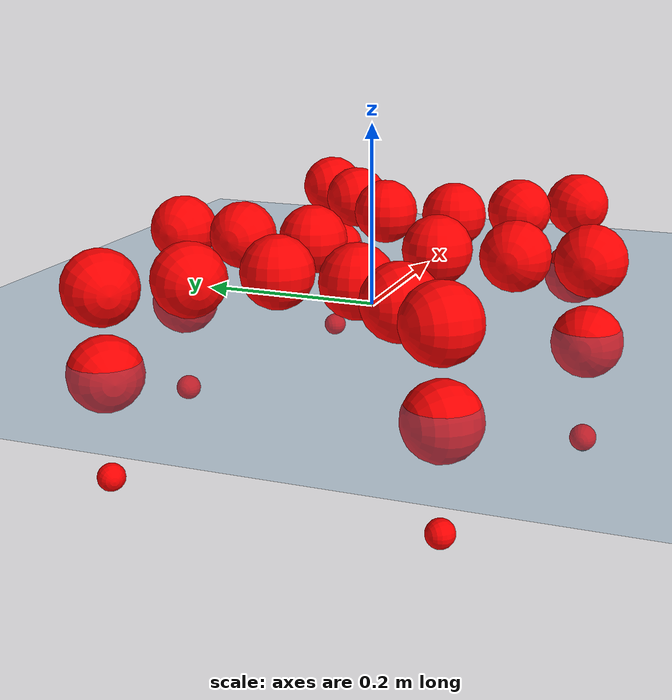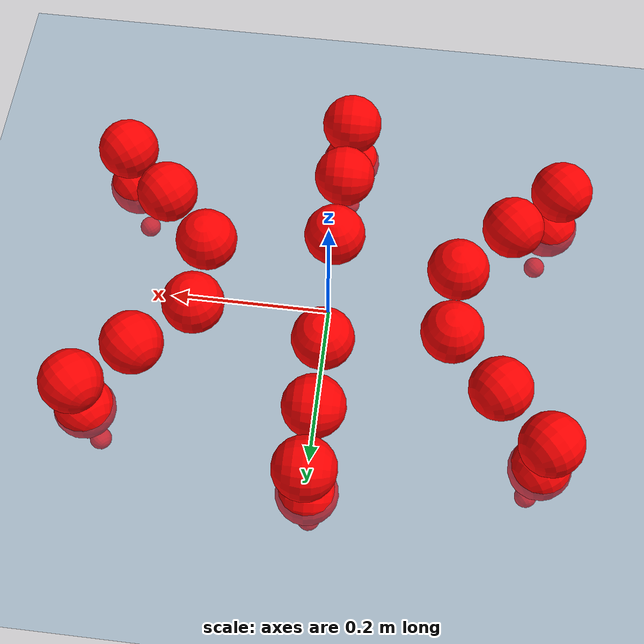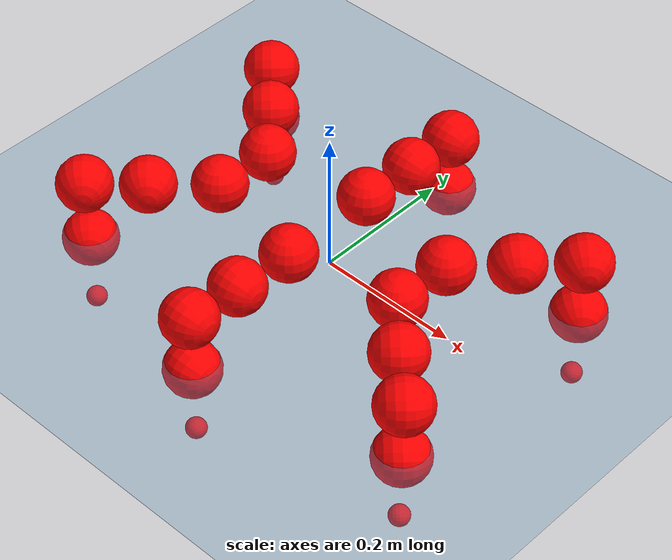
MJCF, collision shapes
<mujoco model="Golem">
  <compiler angle="radian" assetdir="assets" balanceinertia="true" inertiafromgeom="false"/>

  <option timestep="0.005" density="1.2" viscosity="2e-05"/>

  <size nkey="1"/>

  <visual>
    <quality shadowsize="8192"/>
    <map shadowclip="0.5"/>
  </visual>

  <default>
    <default class="/">
      <joint armature="0.01" damping="0.01" frictionloss="0.01"/>
      <geom contype="0" conaffinity="0" group="1" solref="-1000 -80"/>
      <site size="0.01 0.005 0.005" group="5"/>
      <general forcelimited="true" biastype="affine" gainprm="25" biasprm="0 -25 -0.5"/>
      <default class="visual">
        <geom type="mesh" group="2"/>
      </default>
      <default class="collision">
        <geom group="3"/>
      </default>
      <default class="foot">
        <geom size="0.01 0 0" condim="6" group="4" priority="1" solimp="0.015 1 0.01"/>
      </default>
      <default class="reward_collision_sphere">
        <geom group="5" rgba="1 0 0 1"/>
      </default>
    </default>
  </default>

  <asset>
    <texture type="skybox" colorspace="auto" name="//unnamed_texture_0" builtin="gradient" rgb1="0.95 0.95 0.95" rgb2="0.95 0.95 0.95" width="100" height="600"/>
    <texture type="2d" colorspace="auto" name="texplane" builtin="checker" rgb1="0.345 0.575 0.748" rgb2="0.345 0.575 0.748" markrgb="1 1 1" width="512" height="512"/>
    <material name="MatPlane" class="/" texture="texplane" texuniform="true" texrepeat="2 2" specular="0.9"/>
    <mesh name="body" class="/" file="body.stl" scale="0.001 0.001 0.001"/>
    <mesh name="coxa" class="/" file="coxa.stl" scale="0.001 0.001 0.001"/>
    <mesh name="femur" class="/" file="femur.stl" scale="0.001 0.001 0.001"/>
    <mesh name="tibia" class="/" file="tibia.stl" scale="0.001 0.001 0.001"/>
    <mesh name="tarsus" class="/" file="tarsus.stl" scale="0.001 0.001 0.001"/>
  </asset>

  <worldbody>
    <geom name="floor" class="/" size="100 100 0.125" type="plane" group="0" material="MatPlane"/>
    <light name="toplight_shadow" class="/" pos="0 0 5" dir="0.0990148 0.0990148 -0.990148" type="directional" ambient="0.04 0.04 0.04" diffuse="0.55 0.55 0.55" specular="0.12 0.12 0.12"/>
    <light name="toplight_fill" class="/" pos="0 0 5" dir="0.0990148 0.0990148 -0.990148" type="directional" castshadow="false" ambient="0.04 0.04 0.04" diffuse="0.3 0.3 0.3" specular="0.08 0.08 0.08"/>
    <body name="trunk" pos="0.000646024 -0.000441222 -0.000402202" quat="1 -0.000208039 -2.93203e-05 1.02026e-05">
      <inertial pos="0.00313111 0.000240273 -0.00325673" quat="0.999918 0.00320343 -0.00974334 0.00768194" mass="3.29172" diaginertia="0.0104993 0.00258698 0.017112"/>
      <joint name="//unnamed_joint_0" type="free"/>
      <geom name="//unnamed_geom_1" class="/" pos="0 0 0.070544" quat="1 0 0 0" type="mesh" rgba="0.9 0.9 0.9 1" mesh="body"/>
      <site name="imu" class="/" pos="0.124972 -0.00363441 0.100193" size="0.00955381"/>
      <camera name="track" class="/" pos="0 -1.52462 0" quat="0.707107 0.707107 0 0" mode="trackcom"/>
      <camera name="ego_camera" class="/" pos="0.130206 0 0.110225" quat="-0.5 -0.5 0.5 0.5"/>
      <body name="coxa_RR" pos="-0.176926 -0.0626257 0.0689633" quat="0.382573 0.000144436 0.000107418 -0.923925">
        <inertial pos="-0.000342515 -0.00251452 0.000382786" quat="0.999997 -0.00193524 -0.00163228 0.000170458" mass="0.17078" diaginertia="0.00972358 0.00241263 0.0161194"/>
        <joint name="coxa_joint_RR" class="/" pos="0 0 0" axis="0.00108722 -0.00243196 -0.999996" range="-3.19526 3.13873" armature="0.00948396" damping="0" frictionloss="0.00948845"/>
        <geom name="//unnamed_geom_2" class="/" type="mesh" rgba="0.2 0.2 0.2 1" mesh="coxa"/>
        <geom name="//unnamed_geom_3" class="reward_collision_sphere" size="0.0382153" pos="-0.0300475 0 0"/>
        <body name="femur_RR" pos="0.062157 0.00173481 0.00253519" quat="0.499474 -0.500675 0.499295 0.500555">
          <inertial pos="0.000388486 0.000408443 -0.00266986" quat="0.999999 -0.000927154 -0.000708925 0.000453362" mass="0.169617" diaginertia="0.0100064 0.00249545 0.0162687"/>
          <joint name="femur_joint_RR" class="/" pos="0 0 0" axis="-0.0115105 0.00401425 -0.999926" stiffness="0.000600225" range="-3.1384 3.16443" armature="0.00951843" damping="0.00191377" frictionloss="0.0105746"/>
          <geom name="//unnamed_geom_4" class="/" type="mesh" rgba="0.9 0.9 0.9 1" mesh="femur"/>
          <geom name="//unnamed_geom_5" class="reward_collision_sphere" size="0.0382153"/>
          <body name="tibia_RR" pos="-0.00248133 -0.0818114 -0.000726684" quat="1.68988e-05 1 2.96801e-05 -7.98648e-06">
            <inertial pos="0.00100332 -0.0016775 -0.000878942" quat="0.999965 -0.00627908 0.00271747 -0.00478776" mass="0.174074" diaginertia="0.0104465 0.00257236 0.016376"/>
            <joint name="tibia_joint_RR" class="/" pos="0 0 0" axis="0.0144396 0.00643375 0.999875" stiffness="0.000466663" range="-3.08284 3.13001" armature="0.00967677" damping="0.0195295" frictionloss="0.00874949"/>
            <geom name="//unnamed_geom_6" class="/" type="mesh" rgba="0.2 0.2 0.2 1" mesh="tibia"/>
            <geom name="//unnamed_geom_7" class="reward_collision_sphere" size="0.0382153"/>
            <body name="tarsus_RR" pos="0.0903639 -0.00142325 -0.0028765" quat="0.999999 -0.000478529 -0.000738499 0.000939311">
              <inertial pos="0.0587299 -0.000221227 -0.00287812" quat="0.490229 0.503139 0.503797 0.502708" mass="0.17838" diaginertia="0.0100434 0.00262308 0.0156665"/>
              <joint name="tarsus_joint_RR" class="/" pos="0 0 0" axis="0.000526316 0.00170602 0.999998" range="-3.19588 3.14863" armature="0.00906665" damping="0" frictionloss="0.0108612"/>
              <geom name="//unnamed_geom_8" class="/" type="mesh" rgba="0.9 0.9 0.9 1" mesh="tarsus"/>
              <geom name="foot_1" class="foot" size="0.0104516" pos="0.112177 0 0" quat="0 -0.707107 0 0.707107"/>
              <geom name="//unnamed_geom_10" class="reward_collision_sphere" size="0.0382153"/>
              <geom name="//unnamed_geom_11" class="reward_collision_sphere" size="0.0143307" pos="0.10767 0 0"/>
              <site name="foot_1" class="foot" pos="0.112177 0 0" quat="0 -0.707107 0 0.707107" size="0.00955381"/>
            </body>
          </body>
        </body>
      </body>
      <body name="coxa_RM" pos="0.00015696 -0.103965 0.0679979" quat="0.707111 -0.000206315 -0.00036859 -0.707102">
        <inertial pos="0.00300589 0.000131124 -0.00224889" quat="1 -0.000619959 0.000601206 -0.00019631" mass="0.173519" diaginertia="0.00998901 0.00267003 0.0165341"/>
        <joint name="coxa_joint_RM" class="/" pos="0 0 0" axis="0.000820474 0.00313521 -0.999995" range="-3.1595 3.12901" armature="0.0109757" damping="0.00521327" frictionloss="0.0103127"/>
        <geom name="//unnamed_geom_12" class="/" type="mesh" rgba="0.2 0.2 0.2 1" mesh="coxa"/>
        <geom name="//unnamed_geom_13" class="reward_collision_sphere" size="0.0382153" pos="-0.0300475 0 0"/>
        <body name="femur_RM" pos="0.0569051 -0.00270175 0.00104224" quat="0.5004 -0.500055 0.499693 0.499852">
          <inertial pos="0.00174711 -0.00296212 0.000380809" quat="0.999977 -0.00665539 -0.00149831 -0.000552227" mass="0.169301" diaginertia="0.00953163 0.00251325 0.0154748"/>
          <joint name="femur_joint_RM" class="/" pos="0 0 0" axis="0.00206293 -0.0136186 -0.999905" stiffness="0.00777802" range="-3.14755 3.09688" armature="0.0098181" damping="0.0274404" frictionloss="0.00832064"/>
          <geom name="//unnamed_geom_14" class="/" type="mesh" rgba="0.9 0.9 0.9 1" mesh="femur"/>
          <geom name="//unnamed_geom_15" class="reward_collision_sphere" size="0.0382153"/>
          <body name="tibia_RM" pos="-0.00184483 -0.0800635 -0.00106627" quat="-0.00111009 0.999999 -0.000527699 0.000676516">
            <inertial pos="-0.00279968 0.00117343 -0.00109375" quat="0.999907 -0.00158921 -0.0129947 -0.00392629" mass="0.168088" diaginertia="0.00972013 0.00250472 0.0158847"/>
            <joint name="tibia_joint_RM" class="/" pos="0 0 0" axis="-0.00353778 0.000208137 0.999994" range="-3.15118 3.19511" armature="0.00908695" damping="0.0146047" frictionloss="0.0094582"/>
            <geom name="//unnamed_geom_16" class="/" type="mesh" rgba="0.2 0.2 0.2 1" mesh="tibia"/>
            <geom name="//unnamed_geom_17" class="reward_collision_sphere" size="0.0382153"/>
            <body name="tarsus_RM" pos="0.0869222 -0.00050926 0.00052933" quat="1 0.000168001 -6.33203e-05 -6.66383e-05">
              <inertial pos="0.0625854 0.00170055 0.00127142" quat="0.499351 0.502508 0.499018 0.499114" mass="0.176417" diaginertia="0.0100717 0.00254204 0.0164006"/>
              <joint name="tarsus_joint_RM" class="/" pos="0 0 0" axis="0.00162802 -0.00233716 0.999996" range="-3.19494 3.08602" armature="0.00942621" damping="0.00459475" frictionloss="0.00823059"/>
              <geom name="//unnamed_geom_18" class="/" type="mesh" rgba="0.9 0.9 0.9 1" mesh="tarsus"/>
              <geom name="foot_2" class="foot" size="0.0106247" pos="0.112177 0 0" quat="0 -0.707107 0 0.707107"/>
              <geom name="//unnamed_geom_20" class="reward_collision_sphere" size="0.0382153"/>
              <geom name="//unnamed_geom_21" class="reward_collision_sphere" size="0.0143307" pos="0.10767 0 0"/>
              <site name="foot_2" class="foot" pos="0.112177 0 0" quat="0 -0.707107 0 0.707107" size="0.00955381"/>
            </body>
          </body>
        </body>
      </body>
      <body name="coxa_RF" pos="0.177948 -0.0665676 0.0731457" quat="0.924113 -0.000765107 -0.000212954 -0.382118">
        <inertial pos="-3.51934e-05 -0.00207617 0.00286999" quat="0.999944 0.00228006 -0.00825312 0.00619037" mass="0.162578" diaginertia="0.00951393 0.00247695 0.0156607"/>
        <joint name="coxa_joint_RF" class="/" pos="0 0 0" axis="-0.00974485 -0.00332062 -0.999947" range="-3.10171 3.188" armature="0.00826243" damping="0" frictionloss="0.00966341"/>
        <geom name="//unnamed_geom_22" class="/" type="mesh" rgba="0.2 0.2 0.2 1" mesh="coxa"/>
        <geom name="//unnamed_geom_23" class="reward_collision_sphere" size="0.0382153" pos="-0.0300475 0 0"/>
        <body name="femur_RF" pos="0.0587827 -0.00261 -0.0019914" quat="0.500112 -0.499862 0.500041 0.499984">
          <inertial pos="-0.00280103 0.00196912 -0.000696771" quat="0.999991 -0.000379296 0.00423808 -0.000368017" mass="0.173073" diaginertia="0.00998595 0.00263684 0.0163656"/>
          <joint name="femur_joint_RF" class="/" pos="0 0 0" axis="0.00328042 0.00275122 -0.999991" stiffness="0.0054937" range="-3.11925 3.09114" armature="0.009636" damping="0.00058203" frictionloss="0.00843033"/>
          <geom name="//unnamed_geom_24" class="/" type="mesh" rgba="0.9 0.9 0.9 1" mesh="femur"/>
          <geom name="//unnamed_geom_25" class="reward_collision_sphere" size="0.0382153"/>
          <body name="tibia_RF" pos="0.000406283 -0.0850671 0.00173941" quat="3.50161e-05 1 6.61475e-05 3.79581e-06">
            <inertial pos="0.00032991 0.000212152 -0.00142285" quat="0.999924 0.000150633 0.00205906 0.0121222" mass="0.17002" diaginertia="0.00990666 0.00247358 0.0166205"/>
            <joint name="tibia_joint_RF" class="/" pos="0 0 0" axis="0.00162279 -0.00511731 0.999986" range="-3.13213 3.18973" armature="0.00962253" damping="0.00061386" frictionloss="0.0108181"/>
            <geom name="//unnamed_geom_26" class="/" type="mesh" rgba="0.2 0.2 0.2 1" mesh="tibia"/>
            <geom name="//unnamed_geom_27" class="reward_collision_sphere" size="0.0382153"/>
            <body name="tarsus_RF" pos="0.0877733 -0.000229549 0.000926641" quat="0.999999 0.000879767 -0.000411529 0.000979443">
              <inertial pos="0.0582542 -3.51915e-05 0.000713928" quat="0.500626 0.498973 0.499343 0.501055" mass="0.179183" diaginertia="0.0103017 0.00258739 0.0164996"/>
              <joint name="tarsus_joint_RF" class="/" pos="0 0 0" axis="0.00723885 0.0116295 0.999906" stiffness="0.0244255" range="-3.0859 3.13862" armature="0.00939023" damping="0.00328199" frictionloss="0.00936495"/>
              <geom name="//unnamed_geom_28" class="/" type="mesh" rgba="0.9 0.9 0.9 1" mesh="tarsus"/>
              <geom name="foot_3" class="foot" size="0.00920435" pos="0.112177 0 0" quat="0 -0.707107 0 0.707107"/>
              <geom name="//unnamed_geom_30" class="reward_collision_sphere" size="0.0382153"/>
              <geom name="//unnamed_geom_31" class="reward_collision_sphere" size="0.0143307" pos="0.10767 0 0"/>
              <site name="foot_3" class="foot" pos="0.112177 0 0" quat="0 -0.707107 0 0.707107" size="0.00955381"/>
            </body>
          </body>
        </body>
      </body>
      <body name="coxa_LR" pos="-0.175151 0.0656055 0.0701373" quat="0.382952 -0.000253337 -3.87372e-05 0.923768">
        <inertial pos="-0.00267713 -0.00298657 0.00119713" quat="0.999903 -0.0109731 0.00670766 0.00535827" mass="0.167111" diaginertia="0.00986974 0.00239578 0.0154427"/>
        <joint name="coxa_joint_LR" class="/" pos="0 0 0" axis="-0.000244248 -0.000512198 -1" stiffness="0.0108516" range="-3.19188 3.18394" armature="0.0105093" damping="0.000857458" frictionloss="0.00913667"/>
        <geom name="//unnamed_geom_32" class="/" type="mesh" rgba="0.2 0.2 0.2 1" mesh="coxa"/>
        <geom name="//unnamed_geom_33" class="reward_collision_sphere" size="0.0382153" pos="-0.0300475 0 0"/>
        <body name="femur_LR" pos="0.060157 -0.00422944 0.00114724" quat="0.500043 -0.500379 0.499947 0.49963">
          <inertial pos="-0.000990765 -0.000982703 -0.000815939" quat="0.999999 0.000723759 3.49118e-05 -0.00075005" mass="0.174995" diaginertia="0.00989547 0.00267613 0.0160347"/>
          <joint name="femur_joint_LR" class="/" pos="0 0 0" axis="0.00209535 0.00165375 0.999996" range="-3.09464 3.13513" armature="0.0100129" damping="0.0112309" frictionloss="0.00954088"/>
          <geom name="//unnamed_geom_34" class="/" type="mesh" rgba="0.9 0.9 0.9 1" mesh="femur"/>
          <geom name="//unnamed_geom_35" class="reward_collision_sphere" size="0.0382153"/>
          <body name="tibia_LR" pos="-0.00142869 -0.0863122 -0.00164756" quat="-0.000896721 0.999999 -0.000520755 -0.000839133">
            <inertial pos="0.00271371 -0.00270336 -0.00195682" quat="0.999925 0.00110422 0.000846808 -0.0121959" mass="0.172659" diaginertia="0.00975116 0.00248892 0.0162727"/>
            <joint name="tibia_joint_LR" class="/" pos="0 0 0" axis="-0.00129882 0.0102569 -0.999947" range="-3.08781 3.18286" armature="0.0101219" damping="0" frictionloss="0.00965517"/>
            <geom name="//unnamed_geom_36" class="/" type="mesh" rgba="0.2 0.2 0.2 1" mesh="tibia"/>
            <geom name="//unnamed_geom_37" class="reward_collision_sphere" size="0.0382153"/>
            <body name="tarsus_LR" pos="0.0859129 -0.000293435 -0.000896789" quat="0.999999 -0.00102317 0.000600616 0.000728916">
              <inertial pos="0.0594425 -0.00153803 -0.00212794" quat="0.498398 0.507434 0.494293 0.499784" mass="0.174498" diaginertia="0.0103895 0.00250895 0.0159009"/>
              <joint name="tarsus_joint_LR" class="/" pos="0 0 0" axis="0.0114004 -0.00102793 -0.999934" range="-3.18106 3.08355" armature="0.00824713" damping="0" frictionloss="0.00824999"/>
              <geom name="//unnamed_geom_38" class="/" type="mesh" rgba="0.9 0.9 0.9 1" mesh="tarsus"/>
              <geom name="foot_4" class="foot" size="0.00999282" pos="0.112177 0 0" quat="0.707107 0 -0.707107 0"/>
              <geom name="//unnamed_geom_40" class="reward_collision_sphere" size="0.0382153"/>
              <geom name="//unnamed_geom_41" class="reward_collision_sphere" size="0.0143307" pos="0.10767 0 0"/>
              <site name="foot_4" class="foot" pos="0.112177 0 0" quat="0.707107 0 -0.707107 0" size="0.00955381"/>
            </body>
          </body>
        </body>
      </body>
      <body name="coxa_LM" pos="-0.00199308 0.100011 0.0689406" quat="0.706989 -5.181e-05 0.000416446 0.707225">
        <inertial pos="-0.000803501 -0.00283635 0.00206287" quat="0.999927 0.00670248 0.00589311 0.00818406" mass="0.171698" diaginertia="0.0104063 0.00263097 0.0166055"/>
        <joint name="coxa_joint_LM" class="/" pos="0 0 0" axis="0.00240439 -0.00520631 -0.999984" range="-3.14686 3.14293" armature="0.0100583" damping="0.0133203" frictionloss="0.0108735"/>
        <geom name="//unnamed_geom_42" class="/" type="mesh" rgba="0.2 0.2 0.2 1" mesh="coxa"/>
        <geom name="//unnamed_geom_43" class="reward_collision_sphere" size="0.0382153" pos="-0.0300475 0 0"/>
        <body name="femur_LM" pos="0.056142 -0.000374754 -0.00209036" quat="0.50013 -0.499657 0.500087 0.500126">
          <inertial pos="0.0028158 0.000374424 -0.000640209" quat="0.999903 -0.000982244 -0.0023426 0.0137201" mass="0.185075" diaginertia="0.0101413 0.00272106 0.0166176"/>
          <joint name="femur_joint_LM" class="/" pos="0 0 0" axis="-0.00180197 0.00150584 0.999997" range="-3.12354 3.11817" armature="0.00999113" damping="0.0150252" frictionloss="0.00819831"/>
          <geom name="//unnamed_geom_44" class="/" type="mesh" rgba="0.9 0.9 0.9 1" mesh="femur"/>
          <geom name="//unnamed_geom_45" class="reward_collision_sphere" size="0.0382153"/>
          <body name="tibia_LM" pos="-0.00138715 -0.0765172 -0.00146469" quat="-0.000217738 0.999999 -0.00022093 0.00118998">
            <inertial pos="0.00283607 -0.000728943 -0.00252687" quat="0.999935 0.00877222 -0.0072192 0.000345814" mass="0.177882" diaginertia="0.0102529 0.00264566 0.0162815"/>
            <joint name="tibia_joint_LM" class="/" pos="0 0 0" axis="0.00688401 -0.0126814 -0.999896" range="-3.14808 3.13756" armature="0.00929736" damping="0.0050335" frictionloss="0.00826802"/>
            <geom name="//unnamed_geom_46" class="/" type="mesh" rgba="0.2 0.2 0.2 1" mesh="tibia"/>
            <geom name="//unnamed_geom_47" class="reward_collision_sphere" size="0.0382153"/>
            <body name="tarsus_LM" pos="0.0864222 0.00129609 -0.00143468" quat="0.999999 -0.000388927 -0.000194988 0.00102503">
              <inertial pos="0.0599365 0.00053381 0.00263451" quat="0.49326 0.501006 0.50836 0.49725" mass="0.182016" diaginertia="0.0103683 0.00255191 0.0164717"/>
              <joint name="tarsus_joint_LM" class="/" pos="0 0 0" axis="0.00382559 0.00498256 -0.99998" stiffness="0.00647636" range="-3.1596 3.15822" armature="0.00996499" damping="0" frictionloss="0.0106528"/>
              <geom name="//unnamed_geom_48" class="/" type="mesh" rgba="0.9 0.9 0.9 1" mesh="tarsus"/>
              <geom name="foot_5" class="foot" size="0.00987994" pos="0.112177 0 0" quat="0.707107 0 -0.707107 0"/>
              <geom name="//unnamed_geom_50" class="reward_collision_sphere" size="0.0382153"/>
              <geom name="//unnamed_geom_51" class="reward_collision_sphere" size="0.0143307" pos="0.10767 0 0"/>
              <site name="foot_5" class="foot" pos="0.112177 0 0" quat="0.707107 0 -0.707107 0" size="0.00955381"/>
            </body>
          </body>
        </body>
      </body>
      <body name="coxa_LF" pos="0.180138 0.062975 0.0708573" quat="0.923883 1.72619e-05 2.72676e-05 0.382674">
        <inertial pos="0.00116461 -6.49131e-05 0.00259" quat="0.999902 -0.00369273 0.0135277 -0.000456324" mass="0.16976" diaginertia="0.00988184 0.00266655 0.0158308"/>
        <joint name="coxa_joint_LF" class="/" pos="0 0 0" axis="0.00263196 -0.0151972 -0.999881" range="-3.12679 3.13603" armature="0.00817519" damping="0.00026786" frictionloss="0.0100738"/>
        <geom name="//unnamed_geom_52" class="/" type="mesh" rgba="0.2 0.2 0.2 1" mesh="coxa"/>
        <geom name="//unnamed_geom_53" class="reward_collision_sphere" size="0.0382153" pos="-0.0300475 0 0"/>
        <body name="femur_LF" pos="0.0581421 -0.000761151 0.00167438" quat="0.499858 -0.499947 0.500026 0.50017">
          <inertial pos="-0.00132715 -0.000711334 0.00100148" quat="0.999987 -0.00313558 0.00230728 0.00334011" mass="0.167864" diaginertia="0.0102611 0.00252041 0.0162306"/>
          <joint name="femur_joint_LF" class="/" pos="0 0 0" axis="0.000109144 -0.00165841 0.999999" range="-3.1524 3.15599" armature="0.0108711" damping="0.0136775" frictionloss="0.00969297"/>
          <geom name="//unnamed_geom_54" class="/" type="mesh" rgba="0.9 0.9 0.9 1" mesh="femur"/>
          <geom name="//unnamed_geom_55" class="reward_collision_sphere" size="0.0382153"/>
          <body name="tibia_LF" pos="-0.000893974 -0.0829967 -0.00174188" quat="0.000972687 0.999999 -0.000232758 0.000897483">
            <inertial pos="-0.00195932 -0.00107139 0.00158138" quat="1 0.00064597 -0.000293079 0.000463875" mass="0.1762" diaginertia="0.00976191 0.00253294 0.0163387"/>
            <joint name="tibia_joint_LF" class="/" pos="0 0 0" axis="0.0031414 0.00313257 -0.99999" range="-3.14208 3.11967" armature="0.0110513" damping="0" frictionloss="0.00948702"/>
            <geom name="//unnamed_geom_56" class="/" type="mesh" rgba="0.2 0.2 0.2 1" mesh="tibia"/>
            <geom name="//unnamed_geom_57" class="reward_collision_sphere" size="0.0382153"/>
            <body name="tarsus_LF" pos="0.0856139 -0.00123548 0.00130965" quat="1 0.000182512 -0.000172888 2.18887e-05">
              <inertial pos="0.0600023 0.0031296 0.000608324" quat="0.510485 0.501933 0.495108 0.492277" mass="0.16563" diaginertia="0.0101299 0.00244715 0.0164213"/>
              <joint name="tarsus_joint_LF" class="/" pos="0 0 0" axis="-0.0112369 0.00300797 -0.999932" range="-3.14115 3.14186" armature="0.010996" damping="0.00629538" frictionloss="0.00883256"/>
              <geom name="//unnamed_geom_58" class="/" type="mesh" rgba="0.9 0.9 0.9 1" mesh="tarsus"/>
              <geom name="foot_6" class="foot" size="0.0100926" pos="0.112177 0 0" quat="0.707107 0 -0.707107 0"/>
              <geom name="//unnamed_geom_60" class="reward_collision_sphere" size="0.0382153"/>
              <geom name="//unnamed_geom_61" class="reward_collision_sphere" size="0.0143307" pos="0.10767 0 0"/>
              <site name="foot_6" class="foot" pos="0.112177 0 0" quat="0.707107 0 -0.707107 0" size="0.00955381"/>
            </body>
          </body>
        </body>
      </body>
    </body>
  </worldbody>

  <contact>
    <pair class="/" geom1="floor" geom2="foot_1" name="//unnamed_contact_0"/>
    <pair class="/" geom1="floor" geom2="foot_2" name="//unnamed_contact_1"/>
    <pair class="/" geom1="floor" geom2="foot_3" name="//unnamed_contact_2"/>
    <pair class="/" geom1="floor" geom2="foot_4" name="//unnamed_contact_3"/>
    <pair class="/" geom1="floor" geom2="foot_5" name="//unnamed_contact_4"/>
    <pair class="/" geom1="floor" geom2="foot_6" name="//unnamed_contact_5"/>
  </contact>

  <actuator>
    <general name="coxa_joint_RR" class="/" joint="coxa_joint_RR" forcerange="-6.58766 6.58766" gainprm="24.5274" biasprm="0 -24.5274 -0.475772"/>
    <general name="femur_joint_RR" class="/" joint="femur_joint_RR" forcerange="-7.25206 7.25206" gainprm="24.5274" biasprm="0 -24.5274 -0.475772"/>
    <general name="tibia_joint_RR" class="/" joint="tibia_joint_RR" forcerange="-6.75413 6.75413" gainprm="24.5274" biasprm="0 -24.5274 -0.475772"/>
    <general name="tarsus_joint_RR" class="/" joint="tarsus_joint_RR" forcerange="-7.60267 7.60267" gainprm="24.5274" biasprm="0 -24.5274 -0.475772"/>
    <general name="coxa_joint_RM" class="/" joint="coxa_joint_RM" forcerange="-6.70149 6.70149" gainprm="24.5274" biasprm="0 -24.5274 -0.475772"/>
    <general name="femur_joint_RM" class="/" joint="femur_joint_RM" forcerange="-6.9958 6.9958" gainprm="24.5274" biasprm="0 -24.5274 -0.475772"/>
    <general name="tibia_joint_RM" class="/" joint="tibia_joint_RM" forcerange="-7.11637 7.11637" gainprm="24.5274" biasprm="0 -24.5274 -0.475772"/>
    <general name="tarsus_joint_RM" class="/" joint="tarsus_joint_RM" forcerange="-7.42642 7.42642" gainprm="24.5274" biasprm="0 -24.5274 -0.475772"/>
    <general name="coxa_joint_RF" class="/" joint="coxa_joint_RF" forcerange="-7.64838 7.64838" gainprm="24.5274" biasprm="0 -24.5274 -0.475772"/>
    <general name="femur_joint_RF" class="/" joint="femur_joint_RF" forcerange="-6.45545 6.45545" gainprm="24.5274" biasprm="0 -24.5274 -0.475772"/>
    <general name="tibia_joint_RF" class="/" joint="tibia_joint_RF" forcerange="-7.71062 7.71062" gainprm="24.5274" biasprm="0 -24.5274 -0.475772"/>
    <general name="tarsus_joint_RF" class="/" joint="tarsus_joint_RF" forcerange="-6.23309 6.23309" gainprm="24.5274" biasprm="0 -24.5274 -0.475772"/>
    <general name="coxa_joint_LR" class="/" joint="coxa_joint_LR" forcerange="-6.26174 6.26174" gainprm="24.5274" biasprm="0 -24.5274 -0.475772"/>
    <general name="femur_joint_LR" class="/" joint="femur_joint_LR" forcerange="-6.84709 6.84709" gainprm="24.5274" biasprm="0 -24.5274 -0.475772"/>
    <general name="tibia_joint_LR" class="/" joint="tibia_joint_LR" forcerange="-6.97083 6.97083" gainprm="24.5274" biasprm="0 -24.5274 -0.475772"/>
    <general name="tarsus_joint_LR" class="/" joint="tarsus_joint_LR" forcerange="-6.25938 6.25938" gainprm="24.5274" biasprm="0 -24.5274 -0.475772"/>
    <general name="coxa_joint_LM" class="/" joint="coxa_joint_LM" forcerange="-7.09985 7.09985" gainprm="24.5274" biasprm="0 -24.5274 -0.475772"/>
    <general name="femur_joint_LM" class="/" joint="femur_joint_LM" forcerange="-6.23982 6.23982" gainprm="24.5274" biasprm="0 -24.5274 -0.475772"/>
    <general name="tibia_joint_LM" class="/" joint="tibia_joint_LM" forcerange="-6.52879 6.52879" gainprm="24.5274" biasprm="0 -24.5274 -0.475772"/>
    <general name="tarsus_joint_LM" class="/" joint="tarsus_joint_LM" forcerange="-7.02316 7.02316" gainprm="24.5274" biasprm="0 -24.5274 -0.475772"/>
    <general name="coxa_joint_LF" class="/" joint="coxa_joint_LF" forcerange="-6.33338 6.33338" gainprm="24.5274" biasprm="0 -24.5274 -0.475772"/>
    <general name="femur_joint_LF" class="/" joint="femur_joint_LF" forcerange="-6.25903 6.25903" gainprm="24.5274" biasprm="0 -24.5274 -0.475772"/>
    <general name="tibia_joint_LF" class="/" joint="tibia_joint_LF" forcerange="-7.68542 7.68542" gainprm="24.5274" biasprm="0 -24.5274 -0.475772"/>
    <general name="tarsus_joint_LF" class="/" joint="tarsus_joint_LF" forcerange="-6.58666 6.58666" gainprm="24.5274" biasprm="0 -24.5274 -0.475772"/>
  </actuator>

  <sensor>
    <gyro site="imu" name="imu_angular_velocity"/>
    <velocimeter site="imu" name="imu_linear_velocity"/>
    <framelinvel objtype="site" objname="foot_1" name="foot_1_global_linear_velocity"/>
    <framelinvel objtype="site" objname="foot_2" name="foot_2_global_linear_velocity"/>
    <framelinvel objtype="site" objname="foot_3" name="foot_3_global_linear_velocity"/>
    <framelinvel objtype="site" objname="foot_4" name="foot_4_global_linear_velocity"/>
    <framelinvel objtype="site" objname="foot_5" name="foot_5_global_linear_velocity"/>
    <framelinvel objtype="site" objname="foot_6" name="foot_6_global_linear_velocity"/>
  </sensor>

  <keyframe>
    <key name="home" qpos="0 0 0.1457 1 0 0 0 0 0 0 0 0 0 0 0 0 0 0 0 0 0 0 0 0 0 0 0 0 0 0 0"/>
  </keyframe>
</mujoco>
